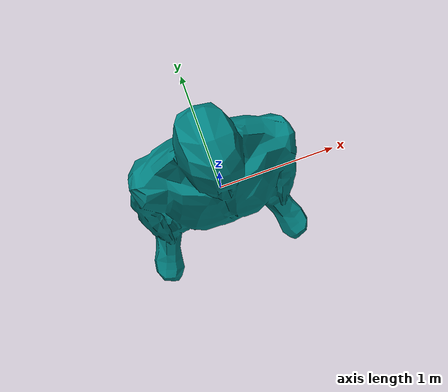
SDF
<?xml version="1.0" ?>
<sdf version="1.6">
  <model name="human">
    <static>true</static>

    <link name="link">
      <!-- 90度回転を防止 -->
      <pose>0 0 0 1.5708 0 0</pose>
      <collision name="collision">
        <geometry>
          <mesh>
            <uri>model://human/meshes/human.obj</uri>
          </mesh>
        </geometry>
      </collision>

      <visual name="visual">
        <geometry>
          <mesh>
            <uri>model://human/meshes/human.obj</uri>
          </mesh>
        </geometry>
        <material>
          <diffuse>0.0 0.5 0.5 1.0</diffuse>
          <ambient>0.1 0.1 0.1 1.0</ambient>
        </material>
      </visual>
    </link>
  </model>
</sdf>
